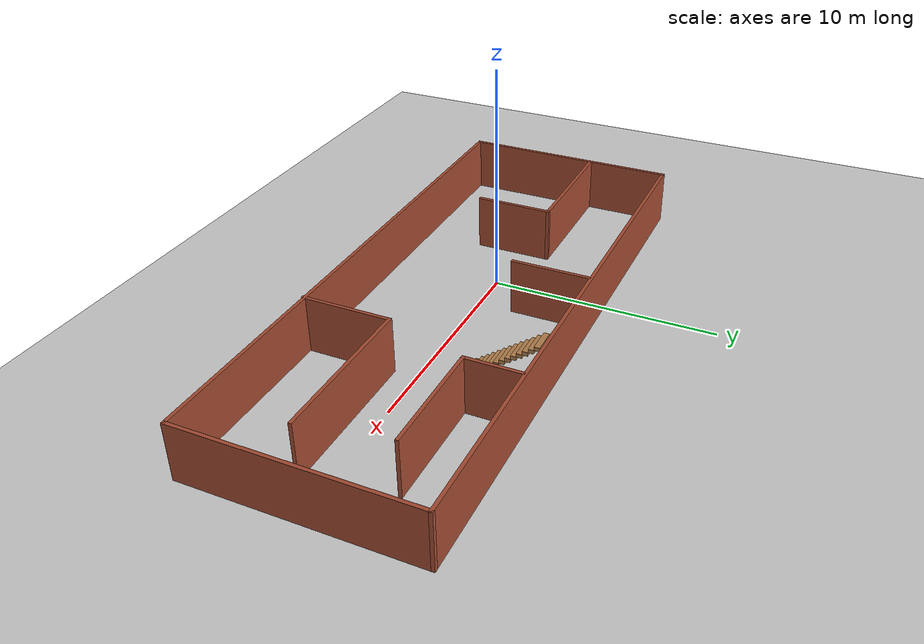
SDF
<sdf version="1.7">
 <world name="default">
  <light name="sun" type="directional">
   <pose>0 0 10 0 -0 0</pose>
   <diffuse>0.8 0.8 0.8 1</diffuse>
   <specular>0.2 0.2 0.2 1</specular>
   <attenuation>
    <range>1000</range>
    <constant>0.9</constant>
    <linear>0.01</linear>
    <quadratic>0.001</quadratic>
   </attenuation>
   <direction>-0.5 0.1 -0.9</direction>
   <spot><inner_angle>0</inner_angle><outer_angle>0</outer_angle><falloff>0</falloff></spot>
  </light>
  <model name="ground_plane">
   <static>1</static>
   <link name="link">
    <collision name="collision">
     <geometry><plane><normal>0 0 1</normal><size>100 100</size></plane></geometry>
     <surface><friction><ode><mu>100</mu><mu2>50</mu2></ode></friction></surface>
    </collision>
    <visual name="visual">
     <cast_shadows>0</cast_shadows>
     <geometry><plane><normal>0 0 1</normal><size>100 100</size></plane></geometry>
     <material>
      <script><uri>file://media/materials/scripts/gazebo.material</uri><name>Gazebo/Grey</name></script>
     </material>
    </visual>
   </link>
  </model>
  <gravity>0 0 -9.8</gravity>
  <magnetic_field>6e-06 2.3e-05 -4.2e-05</magnetic_field>
  <atmosphere type="adiabatic"/>
  <physics type="ode">
   <max_step_size>0.001</max_step_size>
   <real_time_factor>1</real_time_factor>
   <real_time_update_rate>1000</real_time_update_rate>
  </physics>
  <scene><ambient>0.4 0.4 0.4 1</ambient><background>0.7 0.7 0.7 1</background><shadows>1</shadows></scene>
  <audio><device>default</device></audio>
  <spherical_coordinates>
   <surface_model>EARTH_WGS84</surface_model>
   <latitude_deg>0</latitude_deg>
   <longitude_deg>0</longitude_deg>
   <elevation>0</elevation>
   <heading_deg>0</heading_deg>
  </spherical_coordinates>
  <model name="room">
   <pose>3.59536 0.038577 0 0 0 -3.14023</pose>
   <link name="Stairs_2">
    <visual name="Stairs_2_Visual_0">
     <pose>-3.08253 -1.4585 0.083333 0 -0 0</pose>
     <geometry><box><size>1 0.233333 0.166667</size></box></geometry>
     <material>
      <script><uri>file://media/materials/scripts/gazebo.material</uri><name>Gazebo/Wood</name></script>
      <ambient>1 1 1 1</ambient>
     </material>
     <meta><layer>0</layer></meta>
    </visual>
    <collision name="Stairs_2_Collision_0">
     <geometry><box><size>1 0.233333 0.166667</size></box></geometry>
     <pose>-3.08253 -1.4585 0.083333 0 -0 0</pose>
    </collision>
    <visual name="Stairs_2_Visual_1">
     <pose>-3.08253 -1.69183 0.25 0 -0 0</pose>
     <geometry><box><size>1 0.233333 0.166667</size></box></geometry>
     <material>
      <script><uri>file://media/materials/scripts/gazebo.material</uri><name>Gazebo/Wood</name></script>
      <ambient>1 1 1 1</ambient>
     </material>
     <meta><layer>0</layer></meta>
    </visual>
    <collision name="Stairs_2_Collision_1">
     <geometry><box><size>1 0.233333 0.166667</size></box></geometry>
     <pose>-3.08253 -1.69183 0.25 0 -0 0</pose>
    </collision>
    <visual name="Stairs_2_Visual_2">
     <pose>-3.08253 -1.92517 0.416667 0 -0 0</pose>
     <geometry><box><size>1 0.233333 0.166667</size></box></geometry>
     <material>
      <script><uri>file://media/materials/scripts/gazebo.material</uri><name>Gazebo/Wood</name></script>
      <ambient>1 1 1 1</ambient>
     </material>
     <meta><layer>0</layer></meta>
    </visual>
    <collision name="Stairs_2_Collision_2">
     <geometry><box><size>1 0.233333 0.166667</size></box></geometry>
     <pose>-3.08253 -1.92517 0.416667 0 -0 0</pose>
    </collision>
    <visual name="Stairs_2_Visual_3">
     <pose>-3.08253 -2.1585 0.583333 0 -0 0</pose>
     <geometry><box><size>1 0.233333 0.166667</size></box></geometry>
     <material>
      <script><uri>file://media/materials/scripts/gazebo.material</uri><name>Gazebo/Wood</name></script>
      <ambient>1 1 1 1</ambient>
     </material>
     <meta><layer>0</layer></meta>
    </visual>
    <collision name="Stairs_2_Collision_3">
     <geometry><box><size>1 0.233333 0.166667</size></box></geometry>
     <pose>-3.08253 -2.1585 0.583333 0 -0 0</pose>
    </collision>
    <visual name="Stairs_2_Visual_4">
     <pose>-3.08253 -2.39183 0.75 0 -0 0</pose>
     <geometry><box><size>1 0.233333 0.166667</size></box></geometry>
     <material>
      <script><uri>file://media/materials/scripts/gazebo.material</uri><name>Gazebo/Wood</name></script>
      <ambient>1 1 1 1</ambient>
     </material>
     <meta><layer>0</layer></meta>
    </visual>
    <collision name="Stairs_2_Collision_4">
     <geometry><box><size>1 0.233333 0.166667</size></box></geometry>
     <pose>-3.08253 -2.39183 0.75 0 -0 0</pose>
    </collision>
    <visual name="Stairs_2_Visual_5">
     <pose>-3.08253 -2.62517 0.916667 0 -0 0</pose>
     <geometry><box><size>1 0.233333 0.166667</size></box></geometry>
     <material>
      <script><uri>file://media/materials/scripts/gazebo.material</uri><name>Gazebo/Wood</name></script>
      <ambient>1 1 1 1</ambient>
     </material>
     <meta><layer>0</layer></meta>
    </visual>
    <collision name="Stairs_2_Collision_5">
     <geometry><box><size>1 0.233333 0.166667</size></box></geometry>
     <pose>-3.08253 -2.62517 0.916667 0 -0 0</pose>
    </collision>
    <visual name="Stairs_2_Visual_6">
     <pose>-3.08253 -2.8585 1.08333 0 -0 0</pose>
     <geometry><box><size>1 0.233333 0.166667</size></box></geometry>
     <material>
      <script><uri>file://media/materials/scripts/gazebo.material</uri><name>Gazebo/Wood</name></script>
      <ambient>1 1 1 1</ambient>
     </material>
     <meta><layer>0</layer></meta>
    </visual>
    <collision name="Stairs_2_Collision_6">
     <geometry><box><size>1 0.233333 0.166667</size></box></geometry>
     <pose>-3.08253 -2.8585 1.08333 0 -0 0</pose>
    </collision>
    <visual name="Stairs_2_Visual_7">
     <pose>-3.08253 -3.09184 1.25 0 -0 0</pose>
     <geometry><box><size>1 0.233333 0.166667</size></box></geometry>
     <material>
      <script><uri>file://media/materials/scripts/gazebo.material</uri><name>Gazebo/Wood</name></script>
      <ambient>1 1 1 1</ambient>
     </material>
     <meta><layer>0</layer></meta>
    </visual>
    <collision name="Stairs_2_Collision_7">
     <geometry><box><size>1 0.233333 0.166667</size></box></geometry>
     <pose>-3.08253 -3.09184 1.25 0 -0 0</pose>
    </collision>
    <visual name="Stairs_2_Visual_8">
     <pose>-3.08253 -3.32517 1.41667 0 -0 0</pose>
     <geometry><box><size>1 0.233333 0.166667</size></box></geometry>
     <material>
      <script><uri>file://media/materials/scripts/gazebo.material</uri><name>Gazebo/Wood</name></script>
      <ambient>1 1 1 1</ambient>
     </material>
     <meta><layer>0</layer></meta>
    </visual>
    <collision name="Stairs_2_Collision_8">
     <geometry><box><size>1 0.233333 0.166667</size></box></geometry>
     <pose>-3.08253 -3.32517 1.41667 0 -0 0</pose>
    </collision>
    <visual name="Stairs_2_Visual_9">
     <pose>-3.08253 -3.5585 1.58333 0 -0 0</pose>
     <geometry><box><size>1 0.233333 0.166667</size></box></geometry>
     <material>
      <script><uri>file://media/materials/scripts/gazebo.material</uri><name>Gazebo/Wood</name></script>
      <ambient>1 1 1 1</ambient>
     </material>
     <meta><layer>0</layer></meta>
    </visual>
    <collision name="Stairs_2_Collision_9">
     <geometry><box><size>1 0.233333 0.166667</size></box></geometry>
     <pose>-3.08253 -3.5585 1.58333 0 -0 0</pose>
    </collision>
    <visual name="Stairs_2_Visual_10">
     <pose>-3.08253 -3.79183 1.75 0 -0 0</pose>
     <geometry><box><size>1 0.233333 0.166667</size></box></geometry>
     <material>
      <script><uri>file://media/materials/scripts/gazebo.material</uri><name>Gazebo/Wood</name></script>
      <ambient>1 1 1 1</ambient>
     </material>
     <meta><layer>0</layer></meta>
    </visual>
    <collision name="Stairs_2_Collision_10">
     <geometry><box><size>1 0.233333 0.166667</size></box></geometry>
     <pose>-3.08253 -3.79183 1.75 0 -0 0</pose>
    </collision>
    <visual name="Stairs_2_Visual_11">
     <pose>-3.08253 -4.02517 1.91667 0 -0 0</pose>
     <geometry><box><size>1 0.233333 0.166667</size></box></geometry>
     <material>
      <script><uri>file://media/materials/scripts/gazebo.material</uri><name>Gazebo/Wood</name></script>
      <ambient>1 1 1 1</ambient>
     </material>
     <meta><layer>0</layer></meta>
    </visual>
    <collision name="Stairs_2_Collision_11">
     <geometry><box><size>1 0.233333 0.166667</size></box></geometry>
     <pose>-3.08253 -4.02517 1.91667 0 -0 0</pose>
    </collision>
    <visual name="Stairs_2_Visual_12">
     <pose>-3.08253 -4.2585 2.08333 0 -0 0</pose>
     <geometry><box><size>1 0.233333 0.166667</size></box></geometry>
     <material>
      <script><uri>file://media/materials/scripts/gazebo.material</uri><name>Gazebo/Wood</name></script>
      <ambient>1 1 1 1</ambient>
     </material>
     <meta><layer>0</layer></meta>
    </visual>
    <collision name="Stairs_2_Collision_12">
     <geometry><box><size>1 0.233333 0.166667</size></box></geometry>
     <pose>-3.08253 -4.2585 2.08333 0 -0 0</pose>
    </collision>
    <visual name="Stairs_2_Visual_13">
     <pose>-3.08253 -4.49184 2.25 0 -0 0</pose>
     <geometry><box><size>1 0.233333 0.166667</size></box></geometry>
     <material>
      <script><uri>file://media/materials/scripts/gazebo.material</uri><name>Gazebo/Wood</name></script>
      <ambient>1 1 1 1</ambient>
     </material>
     <meta><layer>0</layer></meta>
    </visual>
    <collision name="Stairs_2_Collision_13">
     <geometry><box><size>1 0.233333 0.166667</size></box></geometry>
     <pose>-3.08253 -4.49184 2.25 0 -0 0</pose>
    </collision>
    <visual name="Stairs_2_Visual_14">
     <pose>-3.08253 -4.72517 2.41667 0 -0 0</pose>
     <geometry><box><size>1 0.233333 0.166667</size></box></geometry>
     <material>
      <script><uri>file://media/materials/scripts/gazebo.material</uri><name>Gazebo/Wood</name></script>
      <ambient>1 1 1 1</ambient>
     </material>
     <meta><layer>0</layer></meta>
    </visual>
    <collision name="Stairs_2_Collision_14">
     <geometry><box><size>1 0.233333 0.166667</size></box></geometry>
     <pose>-3.08253 -4.72517 2.41667 0 -0 0</pose>
    </collision>
   </link>
   <link name="Wall_19">
    <collision name="Wall_19_Collision">
     <geometry><box><size>25 0.15 2.5</size></box></geometry>
     <pose>0 0 1.25 0 -0 0</pose>
    </collision>
    <visual name="Wall_19_Visual">
     <pose>0 0 1.25 0 -0 0</pose>
     <geometry><box><size>25 0.15 2.5</size></box></geometry>
     <material>
      <script><uri>file://media/materials/scripts/gazebo.material</uri><name>Gazebo/Bricks</name></script>
      <ambient>1 1 1 1</ambient>
     </material>
     <meta><layer>0</layer></meta>
    </visual>
    <pose>0 4.90187 0 0 -0 0</pose>
   </link>
   <link name="Wall_20">
    <collision name="Wall_20_Collision">
     <geometry><box><size>10 0.15 2.5</size></box></geometry>
     <pose>0 0 1.25 0 -0 0</pose>
    </collision>
    <visual name="Wall_20_Visual">
     <pose>0 0 1.25 0 -0 0</pose>
     <geometry><box><size>10 0.15 2.5</size></box></geometry>
     <material>
      <script><uri>file://media/materials/scripts/gazebo.material</uri><name>Gazebo/Bricks</name></script>
      <ambient>1 1 1 1</ambient>
     </material>
     <meta><layer>0</layer></meta>
    </visual>
    <pose>12.425 -0.023131 0 0 -0 -1.5708</pose>
   </link>
   <link name="Wall_21">
    <collision name="Wall_21_Collision">
     <geometry><box><size>25 0.15 2.5</size></box></geometry>
     <pose>0 0 1.25 0 -0 0</pose>
    </collision>
    <visual name="Wall_21_Visual">
     <pose>0 0 1.25 0 -0 0</pose>
     <geometry><box><size>25 0.15 2.5</size></box></geometry>
     <material>
      <script><uri>file://media/materials/scripts/gazebo.material</uri><name>Gazebo/Bricks</name></script>
      <ambient>1 1 1 1</ambient>
     </material>
     <meta><layer>0</layer></meta>
    </visual>
    <pose>0 -4.94813 0 0 -0 3.14159</pose>
   </link>
   <link name="Wall_22">
    <collision name="Wall_22_Collision">
     <geometry><box><size>10 0.15 2.5</size></box></geometry>
     <pose>0 0 1.25 0 -0 0</pose>
    </collision>
    <visual name="Wall_22_Visual">
     <pose>0 0 1.25 0 -0 0</pose>
     <geometry><box><size>10 0.15 2.5</size></box></geometry>
     <material>
      <script><uri>file://media/materials/scripts/gazebo.material</uri><name>Gazebo/Bricks</name></script>
      <ambient>1 1 1 1</ambient>
     </material>
     <meta><layer>0</layer></meta>
    </visual>
    <pose>-12.425 -0.023131 0 0 -0 1.5708</pose>
   </link>
   <link name="Wall_25">
    <collision name="Wall_25_Collision">
     <geometry><box><size>6 0.15 2.5</size></box></geometry>
     <pose>0 0 1.25 0 -0 0</pose>
    </collision>
    <visual name="Wall_25_Visual">
     <pose>0 0 1.25 0 -0 0</pose>
     <geometry><box><size>6 0.15 2.5</size></box></geometry>
     <material>
      <script><uri>file://media/materials/scripts/gazebo.material</uri><name>Gazebo/Bricks</name></script>
      <ambient>1 1 1 1</ambient>
     </material>
     <meta><layer>0</layer></meta>
    </visual>
    <pose>9.44601 -1.22774 0 0 -0 3.14159</pose>
   </link>
   <link name="Wall_26">
    <collision name="Wall_26_Collision">
     <geometry><box><size>3.5 0.15 2.5</size></box></geometry>
     <pose>0 0 1.25 0 -0 0</pose>
    </collision>
    <visual name="Wall_26_Visual">
     <pose>0 0 1.25 0 -0 0</pose>
     <geometry><box><size>3.5 0.15 2.5</size></box></geometry>
     <material>
      <script><uri>file://media/materials/scripts/gazebo.material</uri><name>Gazebo/Bricks</name></script>
      <ambient>1 1 1 1</ambient>
     </material>
     <meta><layer>0</layer></meta>
    </visual>
    <pose>6.52101 0.447258 0 0 -0 1.5708</pose>
   </link>
   <link name="Wall_28">
    <collision name="Wall_28_Collision">
     <geometry><box><size>3.5 0.15 2.5</size></box></geometry>
     <pose>0 0 1.25 0 -0 0</pose>
    </collision>
    <visual name="Wall_28_Visual">
     <pose>0 0 1.25 0 -0 0</pose>
     <geometry><box><size>3.5 0.15 2.5</size></box></geometry>
     <material>
      <script><uri>file://media/materials/scripts/gazebo.material</uri><name>Gazebo/Bricks</name></script>
      <ambient>1 1 1 1</ambient>
     </material>
     <meta><layer>0</layer></meta>
    </visual>
    <pose>1.80032 -3.18425 0 0 -0 1.5708</pose>
   </link>
   <link name="Wall_30">
    <collision name="Wall_30_Collision">
     <geometry><box><size>2.5 0.15 2.5</size></box></geometry>
     <pose>0 0 1.25 0 -0 0</pose>
    </collision>
    <visual name="Wall_30_Visual">
     <pose>0 0 1.25 0 -0 0</pose>
     <geometry><box><size>2.5 0.15 2.5</size></box></geometry>
     <material>
      <script><uri>file://media/materials/scripts/gazebo.material</uri><name>Gazebo/Bricks</name></script>
      <ambient>1 1 1 1</ambient>
     </material>
     <meta><layer>0</layer></meta>
    </visual>
    <pose>-5.18512 -3.68425 0 0 -0 1.5708</pose>
   </link>
   <link name="Wall_31">
    <collision name="Wall_31_Collision">
     <geometry><box><size>5 0.15 2.5</size></box></geometry>
     <pose>0 0 1.25 0 -0 0</pose>
    </collision>
    <visual name="Wall_31_Visual">
     <pose>0 0 1.25 0 -0 0</pose>
     <geometry><box><size>5 0.15 2.5</size></box></geometry>
     <material>
      <script><uri>file://media/materials/scripts/gazebo.material</uri><name>Gazebo/Bricks</name></script>
      <ambient>1 1 1 1</ambient>
     </material>
     <meta><layer>0</layer></meta>
    </visual>
    <pose>-7.61012 -2.50925 0 0 -0 3.14159</pose>
   </link>
   <link name="Wall_33">
    <collision name="Wall_33_Collision">
     <geometry><box><size>4 0.15 2.5</size></box></geometry>
     <pose>0 0 1.25 0 -0 0</pose>
    </collision>
    <visual name="Wall_33_Visual">
     <pose>0 0 1.25 0 -0 0</pose>
     <geometry><box><size>4 0.15 2.5</size></box></geometry>
     <material>
      <script><uri>file://media/materials/scripts/gazebo.material</uri><name>Gazebo/Bricks</name></script>
      <ambient>1 1 1 1</ambient>
     </material>
     <meta><layer>0</layer></meta>
    </visual>
    <pose>-4.12111 3.02313 0 0 -0 -1.5708</pose>
   </link>
   <link name="Wall_34">
    <collision name="Wall_34_Collision">
     <geometry><box><size>6.75 0.15 2.5</size></box></geometry>
     <pose>0 0 1.25 0 -0 0</pose>
    </collision>
    <visual name="Wall_34_Visual">
     <pose>0 0 1.25 0 -0 0</pose>
     <geometry><box><size>6.75 0.15 2.5</size></box></geometry>
     <material>
      <script><uri>file://media/materials/scripts/gazebo.material</uri><name>Gazebo/Bricks</name></script>
      <ambient>1 1 1 1</ambient>
     </material>
     <meta><layer>0</layer></meta>
    </visual>
    <pose>-7.42111 1.09813 0 0 -0 3.14159</pose>
   </link>
   <static>1</static>
  </model>
  <model name="bookshelf">
   <static>1</static>
   <link name="link">
    <inertial><mass>1</mass></inertial>
    <collision name="back">
     <pose>0 0.005 0.6 0 -0 0</pose>
     <geometry><box><size>0.9 0.01 1.2</size></box></geometry>
    </collision>
    <visual name="visual1">
     <pose>0 0.005 0.6 0 -0 0</pose>
     <geometry><box><size>0.9 0.01 1.2</size></box></geometry>
     <material>
      <script><uri>file://media/materials/scripts/gazebo.material</uri><name>Gazebo/Wood</name></script>
     </material>
    </visual>
    <collision name="left_side">
     <pose>0.45 -0.195 0.6 0 -0 0</pose>
     <geometry><box><size>0.02 0.4 1.2</size></box></geometry>
    </collision>
    <visual name="visual2">
     <pose>0.45 -0.195 0.6 0 -0 0</pose>
     <geometry><box><size>0.02 0.4 1.2</size></box></geometry>
     <material>
      <script><uri>file://media/materials/scripts/gazebo.material</uri><name>Gazebo/Wood</name></script>
     </material>
    </visual>
    <collision name="right_side">
     <pose>-0.45 -0.195 0.6 0 -0 0</pose>
     <geometry><box><size>0.02 0.4 1.2</size></box></geometry>
    </collision>
    <visual name="visual3">
     <pose>-0.45 -0.195 0.6 0 -0 0</pose>
     <geometry><box><size>0.02 0.4 1.2</size></box></geometry>
     <material>
      <script><uri>file://media/materials/scripts/gazebo.material</uri><name>Gazebo/Wood</name></script>
     </material>
    </visual>
    <collision name="bottom">
     <pose>0 -0.195 0.03 0 -0 0</pose>
     <geometry><box><size>0.88 0.4 0.06</size></box></geometry>
    </collision>
    <visual name="visual4">
     <pose>0 -0.195 0.03 0 -0 0</pose>
     <geometry><box><size>0.88 0.4 0.06</size></box></geometry>
     <material>
      <script><uri>file://media/materials/scripts/gazebo.material</uri><name>Gazebo/Wood</name></script>
     </material>
    </visual>
    <collision name="top">
     <pose>0 -0.195 1.19 0 -0 0</pose>
     <geometry><box><size>0.88 0.4 0.02</size></box></geometry>
    </collision>
    <visual name="visual5">
     <pose>0 -0.195 1.19 0 -0 0</pose>
     <geometry><box><size>0.88 0.4 0.02</size></box></geometry>
     <material>
      <script><uri>file://media/materials/scripts/gazebo.material</uri><name>Gazebo/Wood</name></script>
     </material>
    </visual>
    <collision name="low_shelf">
     <pose>0 -0.195 0.43 0 -0 0</pose>
     <geometry><box><size>0.88 0.4 0.02</size></box></geometry>
    </collision>
    <visual name="visual6">
     <pose>0 -0.195 0.43 0 -0 0</pose>
     <geometry><box><size>0.88 0.4 0.02</size></box></geometry>
     <material>
      <script><uri>file://media/materials/scripts/gazebo.material</uri><name>Gazebo/Wood</name></script>
     </material>
    </visual>
    <collision name="high_shelf">
     <pose>0 -0.195 0.8 0 -0 0</pose>
     <geometry><box><size>0.88 0.4 0.02</size></box></geometry>
    </collision>
    <visual name="visual7">
     <pose>0 -0.195 0.8 0 -0 0</pose>
     <geometry><box><size>0.88 0.4 0.02</size></box></geometry>
     <material>
      <script><uri>file://media/materials/scripts/gazebo.material</uri><name>Gazebo/Wood</name></script>
     </material>
    </visual>
   </link>
   <pose>9.2821 2.42093 0 0 -0 0</pose>
  </model>
  <model name="cabinet">
   <static>1</static>
   <link name="cabinet_bottom_plate">
    <inertial>
     <pose>0 0 -1 0 -0 0</pose>
     <inertia><ixx>2.05</ixx><ixy>0</ixy><ixz>0</ixz><iyy>2.05</iyy><iyz>0</iyz><izz>2.05</izz></inertia>
     <mass>25</mass>
    </inertial>
    <collision name="cabinet_bottom_plate_geom">
     <pose>0 0 0.01 0 -0 0</pose>
     <geometry><box><size>0.45 0.45 0.02</size></box></geometry>
    </collision>
    <visual name="cabinet_bottom_plate_geom_visual">
     <pose>0 0 0.01 0 -0 0</pose>
     <geometry><box><size>0.45 0.45 0.02</size></box></geometry>
     <material>
      <script><uri>file://media/materials/scripts/gazebo.material</uri><name>Gazebo/Wood</name></script>
     </material>
    </visual>
    <collision name="cabinet_bottom_plate_geom_cabinet_back_plate">
     <pose>0.235 0 0.51 0 -0 0</pose>
     <geometry><box><size>0.02 0.45 1.02</size></box></geometry>
    </collision>
    <visual name="cabinet_bottom_plate_geom_cabinet_back_plate_visual">
     <pose>0.235 0 0.51 0 -0 0</pose>
     <geometry><box><size>0.02 0.45 1.02</size></box></geometry>
     <material>
      <script><uri>file://media/materials/scripts/gazebo.material</uri><name>Gazebo/Wood</name></script>
     </material>
    </visual>
    <collision name="cabinet_bottom_plate_geom_cabinet_left_plate">
     <pose>0 0.235 0.51 0 -0 0</pose>
     <geometry><box><size>0.45 0.02 1.02</size></box></geometry>
    </collision>
    <visual name="cabinet_bottom_plate_geom_cabinet_left_plate_visual">
     <pose>0 0.235 0.51 0 -0 0</pose>
     <geometry><box><size>0.45 0.02 1.02</size></box></geometry>
     <material>
      <script><uri>file://media/materials/scripts/gazebo.material</uri><name>Gazebo/Wood</name></script>
     </material>
    </visual>
    <collision name="cabinet_bottom_plate_geom_cabinet_middle_plate">
     <pose>0 0 0.51 0 -0 0</pose>
     <geometry><box><size>0.45 0.45 0.02</size></box></geometry>
    </collision>
    <visual name="cabinet_bottom_plate_geom_cabinet_middle_plate_visual">
     <pose>0 0 0.51 0 -0 0</pose>
     <geometry><box><size>0.45 0.45 0.02</size></box></geometry>
     <material>
      <script><uri>file://media/materials/scripts/gazebo.material</uri><name>Gazebo/Wood</name></script>
     </material>
    </visual>
    <collision name="cabinet_bottom_plate_geom_cabinet_right_plate">
     <pose>0 -0.235 0.51 0 -0 0</pose>
     <geometry><box><size>0.45 0.02 1.02</size></box></geometry>
    </collision>
    <visual name="cabinet_bottom_plate_geom_cabinet_right_plate_visual">
     <pose>0 -0.235 0.51 0 -0 0</pose>
     <geometry><box><size>0.45 0.02 1.02</size></box></geometry>
     <material>
      <script><uri>file://media/materials/scripts/gazebo.material</uri><name>Gazebo/Wood</name></script>
     </material>
    </visual>
    <collision name="cabinet_bottom_plate_geom_cabinet_top_plate">
     <pose>0 0 1.01 0 -0 0</pose>
     <geometry><box><size>0.45 0.45 0.02</size></box></geometry>
    </collision>
    <visual name="cabinet_bottom_plate_geom_cabinet_top_plate_visual">
     <pose>0 0 1.01 0 -0 0</pose>
     <geometry><box><size>0.45 0.45 0.02</size></box></geometry>
     <material>
      <script><uri>file://media/materials/scripts/gazebo.material</uri><name>Gazebo/Wood</name></script>
     </material>
    </visual>
   </link>
   <pose>7.50681 -1.6022 0 0 -0 0</pose>
  </model>
  <model name="bookshelf_0">
   <static>1</static>
   <link name="link">
    <inertial><mass>1</mass></inertial>
    <collision name="back">
     <pose>0 0.005 0.6 0 -0 0</pose>
     <geometry><box><size>0.9 0.01 1.2</size></box></geometry>
    </collision>
    <visual name="visual1">
     <pose>0 0.005 0.6 0 -0 0</pose>
     <geometry><box><size>0.9 0.01 1.2</size></box></geometry>
     <material>
      <script><uri>file://media/materials/scripts/gazebo.material</uri><name>Gazebo/Wood</name></script>
     </material>
    </visual>
    <collision name="left_side">
     <pose>0.45 -0.195 0.6 0 -0 0</pose>
     <geometry><box><size>0.02 0.4 1.2</size></box></geometry>
    </collision>
    <visual name="visual2">
     <pose>0.45 -0.195 0.6 0 -0 0</pose>
     <geometry><box><size>0.02 0.4 1.2</size></box></geometry>
     <material>
      <script><uri>file://media/materials/scripts/gazebo.material</uri><name>Gazebo/Wood</name></script>
     </material>
    </visual>
    <collision name="right_side">
     <pose>-0.45 -0.195 0.6 0 -0 0</pose>
     <geometry><box><size>0.02 0.4 1.2</size></box></geometry>
    </collision>
    <visual name="visual3">
     <pose>-0.45 -0.195 0.6 0 -0 0</pose>
     <geometry><box><size>0.02 0.4 1.2</size></box></geometry>
     <material>
      <script><uri>file://media/materials/scripts/gazebo.material</uri><name>Gazebo/Wood</name></script>
     </material>
    </visual>
    <collision name="bottom">
     <pose>0 -0.195 0.03 0 -0 0</pose>
     <geometry><box><size>0.88 0.4 0.06</size></box></geometry>
    </collision>
    <visual name="visual4">
     <pose>0 -0.195 0.03 0 -0 0</pose>
     <geometry><box><size>0.88 0.4 0.06</size></box></geometry>
     <material>
      <script><uri>file://media/materials/scripts/gazebo.material</uri><name>Gazebo/Wood</name></script>
     </material>
    </visual>
    <collision name="top">
     <pose>0 -0.195 1.19 0 -0 0</pose>
     <geometry><box><size>0.88 0.4 0.02</size></box></geometry>
    </collision>
    <visual name="visual5">
     <pose>0 -0.195 1.19 0 -0 0</pose>
     <geometry><box><size>0.88 0.4 0.02</size></box></geometry>
     <material>
      <script><uri>file://media/materials/scripts/gazebo.material</uri><name>Gazebo/Wood</name></script>
     </material>
    </visual>
    <collision name="low_shelf">
     <pose>0 -0.195 0.43 0 -0 0</pose>
     <geometry><box><size>0.88 0.4 0.02</size></box></geometry>
    </collision>
    <visual name="visual6">
     <pose>0 -0.195 0.43 0 -0 0</pose>
     <geometry><box><size>0.88 0.4 0.02</size></box></geometry>
     <material>
      <script><uri>file://media/materials/scripts/gazebo.material</uri><name>Gazebo/Wood</name></script>
     </material>
    </visual>
    <collision name="high_shelf">
     <pose>0 -0.195 0.8 0 -0 0</pose>
     <geometry><box><size>0.88 0.4 0.02</size></box></geometry>
    </collision>
    <visual name="visual7">
     <pose>0 -0.195 0.8 0 -0 0</pose>
     <geometry><box><size>0.88 0.4 0.02</size></box></geometry>
     <material>
      <script><uri>file://media/materials/scripts/gazebo.material</uri><name>Gazebo/Wood</name></script>
     </material>
    </visual>
   </link>
   <pose>-4.84884 1.105 0 0 -0 0</pose>
  </model>
 </world>
</sdf>
